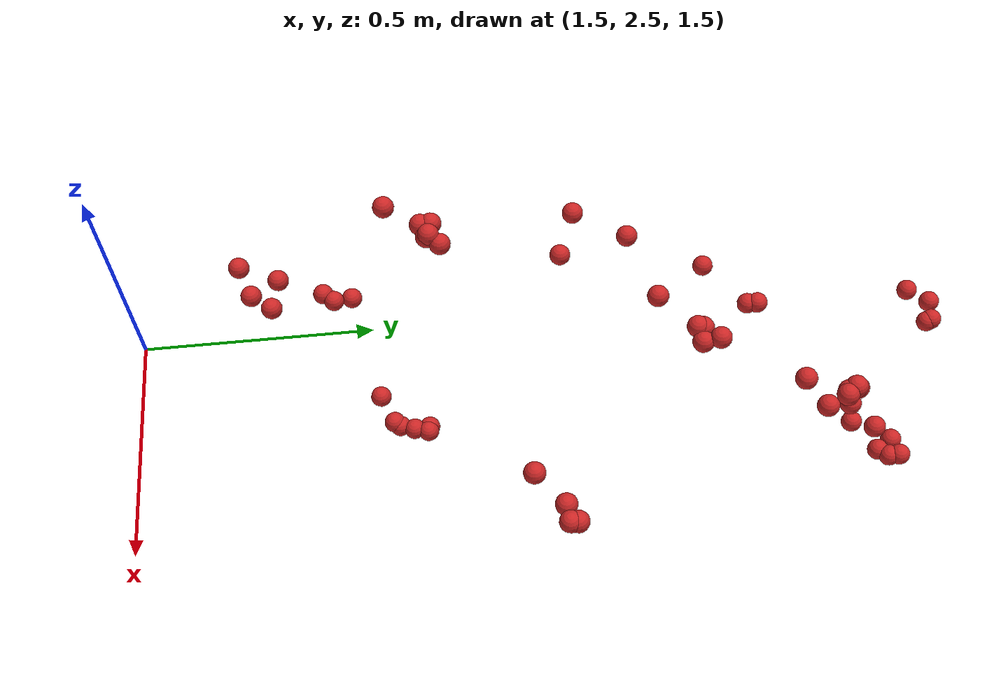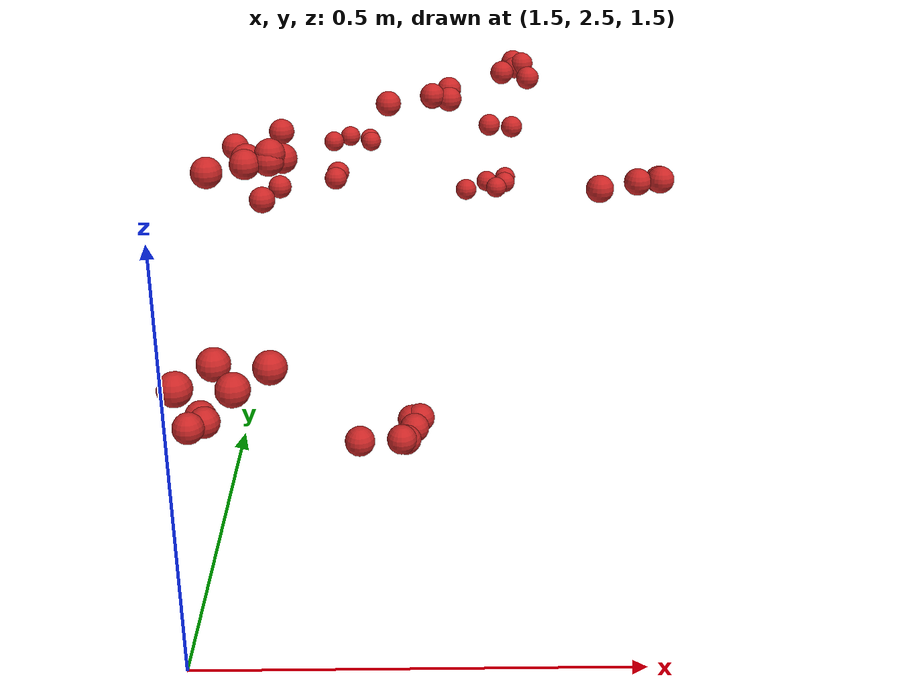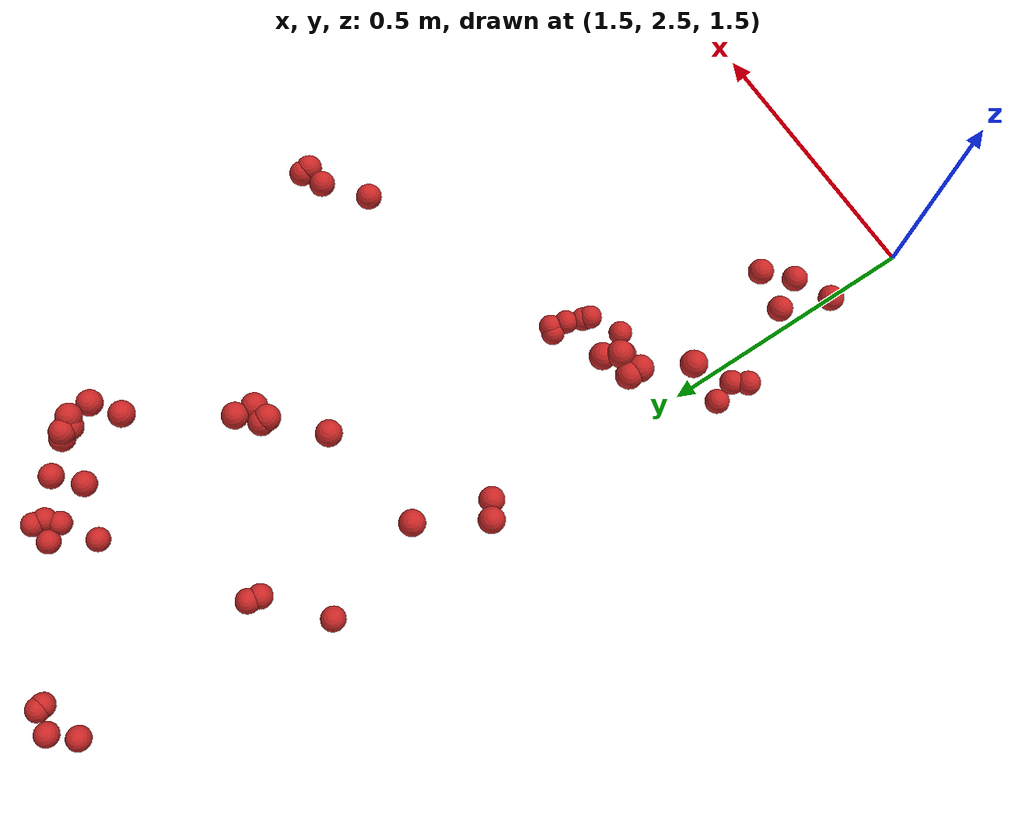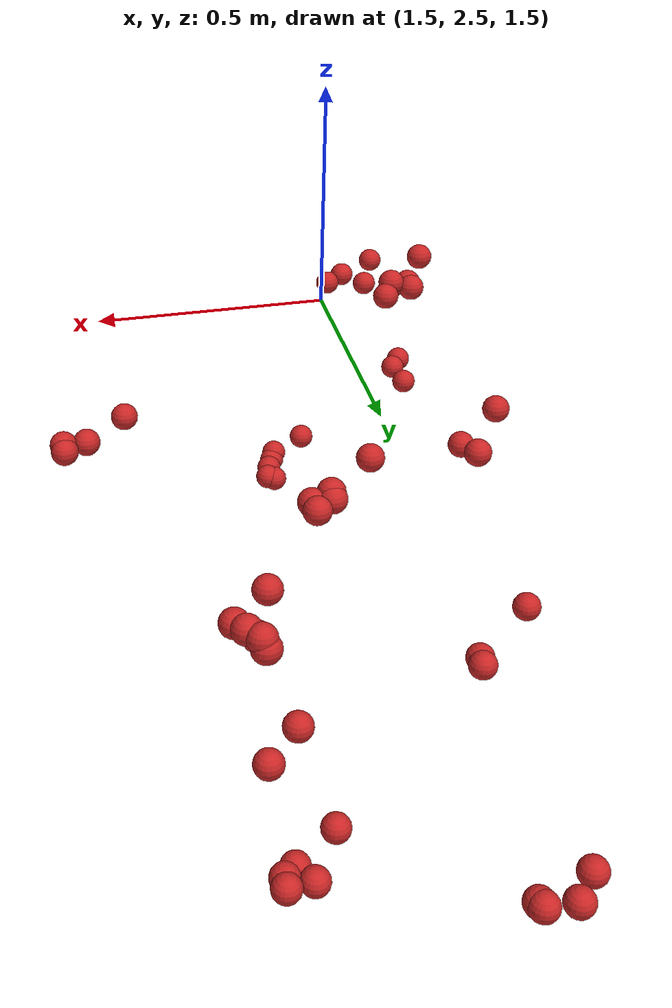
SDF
<sdf version="1.4">
 <model name="fruit_population">
  <static>true</static>
  <link name="fruit_3">
   <pose>1.461415170424467 3.0596517747299097 1.8744114157654639 0 0 0</pose>
   <collision name="fruit_collision_3"><geometry><sphere><radius>0.022</radius></sphere></geometry></collision>
   <visual name="visual">
    <geometry><sphere><radius>0.022</radius></sphere></geometry>
    <material><script><name>Gazebo/Red</name></script></material>
   </visual>
   <inertial>
    <mass>0.05</mass>
    <inertia>
     <ixx>9.679999999999999e-06</ixx>
     <ixy>0.0</ixy>
     <ixz>0.0</ixz>
     <iyy>9.679999999999999e-06</iyy>
     <iyz>0.0</iyz>
     <izz>9.679999999999999e-06</izz>
    </inertia>
   </inertial>
   <sensor name="fruit_contact_3" type="contact">
    <plugin name="contact_plugin_3" filename="libcontact_plugin.so"/>
    <contact><collision>fruit_collision_3</collision><topic>fruit_contact_topic_3</topic></contact>
   </sensor>
  </link>
  <link name="fruit_23">
   <pose>1.4610572739695524 2.7421724189867294 1.7140123662024471 0 0 0</pose>
   <collision name="fruit_collision_23"><geometry><sphere><radius>0.022</radius></sphere></geometry></collision>
   <visual name="visual">
    <geometry><sphere><radius>0.022</radius></sphere></geometry>
    <material><script><name>Gazebo/Red</name></script></material>
   </visual>
   <inertial>
    <mass>0.05</mass>
    <inertia>
     <ixx>9.679999999999999e-06</ixx>
     <ixy>0.0</ixy>
     <ixz>0.0</ixz>
     <iyy>9.679999999999999e-06</iyy>
     <iyz>0.0</iyz>
     <izz>9.679999999999999e-06</izz>
    </inertia>
   </inertial>
   <sensor name="fruit_contact_23" type="contact">
    <plugin name="contact_plugin_23" filename="libcontact_plugin.so"/>
    <contact><collision>fruit_collision_23</collision><topic>fruit_contact_topic_23</topic></contact>
   </sensor>
  </link>
  <link name="fruit_35">
   <pose>2.033196874632339 3.3074651122104486 1.7580920331443115 0 0 0</pose>
   <collision name="fruit_collision_35"><geometry><sphere><radius>0.022</radius></sphere></geometry></collision>
   <visual name="visual">
    <geometry><sphere><radius>0.022</radius></sphere></geometry>
    <material><script><name>Gazebo/Red</name></script></material>
   </visual>
   <inertial>
    <mass>0.05</mass>
    <inertia>
     <ixx>9.679999999999999e-06</ixx>
     <ixy>0.0</ixy>
     <ixz>0.0</ixz>
     <iyy>9.679999999999999e-06</iyy>
     <iyz>0.0</iyz>
     <izz>9.679999999999999e-06</izz>
    </inertia>
   </inertial>
   <sensor name="fruit_contact_35" type="contact">
    <plugin name="contact_plugin_35" filename="libcontact_plugin.so"/>
    <contact><collision>fruit_collision_35</collision><topic>fruit_contact_topic_35</topic></contact>
   </sensor>
  </link>
  <link name="fruit_54">
   <pose>1.6940554636960308 3.588182582914421 1.8154867118001696 0 0 0</pose>
   <collision name="fruit_collision_54"><geometry><sphere><radius>0.022</radius></sphere></geometry></collision>
   <visual name="visual">
    <geometry><sphere><radius>0.022</radius></sphere></geometry>
    <material><script><name>Gazebo/Red</name></script></material>
   </visual>
   <inertial>
    <mass>0.05</mass>
    <inertia>
     <ixx>9.679999999999999e-06</ixx>
     <ixy>0.0</ixy>
     <ixz>0.0</ixz>
     <iyy>9.679999999999999e-06</iyy>
     <iyz>0.0</iyz>
     <izz>9.679999999999999e-06</izz>
    </inertia>
   </inertial>
   <sensor name="fruit_contact_54" type="contact">
    <plugin name="contact_plugin_54" filename="libcontact_plugin.so"/>
    <contact><collision>fruit_collision_54</collision><topic>fruit_contact_topic_54</topic></contact>
   </sensor>
  </link>
  <link name="fruit_66">
   <pose>1.8887809052484796 3.9623957655818933 1.6596712220158767 0 0 0</pose>
   <collision name="fruit_collision_66"><geometry><sphere><radius>0.022</radius></sphere></geometry></collision>
   <visual name="visual">
    <geometry><sphere><radius>0.022</radius></sphere></geometry>
    <material><script><name>Gazebo/Red</name></script></material>
   </visual>
   <inertial>
    <mass>0.05</mass>
    <inertia>
     <ixx>9.679999999999999e-06</ixx>
     <ixy>0.0</ixy>
     <ixz>0.0</ixz>
     <iyy>9.679999999999999e-06</iyy>
     <iyz>0.0</iyz>
     <izz>9.679999999999999e-06</izz>
    </inertia>
   </inertial>
   <sensor name="fruit_contact_66" type="contact">
    <plugin name="contact_plugin_66" filename="libcontact_plugin.so"/>
    <contact><collision>fruit_collision_66</collision><topic>fruit_contact_topic_66</topic></contact>
   </sensor>
  </link>
  <link name="fruit_71">
   <pose>1.4798418697088527 3.7324781438710875 1.609637155316675 0 0 0</pose>
   <collision name="fruit_collision_71"><geometry><sphere><radius>0.022</radius></sphere></geometry></collision>
   <visual name="visual">
    <geometry><sphere><radius>0.022</radius></sphere></geometry>
    <material><script><name>Gazebo/Red</name></script></material>
   </visual>
   <inertial>
    <mass>0.05</mass>
    <inertia>
     <ixx>9.679999999999999e-06</ixx>
     <ixy>0.0</ixy>
     <ixz>0.0</ixz>
     <iyy>9.679999999999999e-06</iyy>
     <iyz>0.0</iyz>
     <izz>9.679999999999999e-06</izz>
    </inertia>
   </inertial>
   <sensor name="fruit_contact_71" type="contact">
    <plugin name="contact_plugin_71" filename="libcontact_plugin.so"/>
    <contact><collision>fruit_collision_71</collision><topic>fruit_contact_topic_71</topic></contact>
   </sensor>
  </link>
  <link name="fruit_72">
   <pose>1.5521702279331804 4.183644911034446 1.5536185929472948 0 0 0</pose>
   <collision name="fruit_collision_72"><geometry><sphere><radius>0.022</radius></sphere></geometry></collision>
   <visual name="visual">
    <geometry><sphere><radius>0.022</radius></sphere></geometry>
    <material><script><name>Gazebo/Red</name></script></material>
   </visual>
   <inertial>
    <mass>0.05</mass>
    <inertia>
     <ixx>9.679999999999999e-06</ixx>
     <ixy>0.0</ixy>
     <ixz>0.0</ixz>
     <iyy>9.679999999999999e-06</iyy>
     <iyz>0.0</iyz>
     <izz>9.679999999999999e-06</izz>
    </inertia>
   </inertial>
   <sensor name="fruit_contact_72" type="contact">
    <plugin name="contact_plugin_72" filename="libcontact_plugin.so"/>
    <contact><collision>fruit_collision_72</collision><topic>fruit_contact_topic_72</topic></contact>
   </sensor>
  </link>
  <link name="fruit_90">
   <pose>1.4438562682026237 3.446555152127506 1.7842292341678492 0 0 0</pose>
   <collision name="fruit_collision_90"><geometry><sphere><radius>0.022</radius></sphere></geometry></collision>
   <visual name="visual">
    <geometry><sphere><radius>0.022</radius></sphere></geometry>
    <material><script><name>Gazebo/Red</name></script></material>
   </visual>
   <inertial>
    <mass>0.05</mass>
    <inertia>
     <ixx>9.679999999999999e-06</ixx>
     <ixy>0.0</ixy>
     <ixz>0.0</ixz>
     <iyy>9.679999999999999e-06</iyy>
     <iyz>0.0</iyz>
     <izz>9.679999999999999e-06</izz>
    </inertia>
   </inertial>
   <sensor name="fruit_contact_90" type="contact">
    <plugin name="contact_plugin_90" filename="libcontact_plugin.so"/>
    <contact><collision>fruit_collision_90</collision><topic>fruit_contact_topic_90</topic></contact>
   </sensor>
  </link>
  <link name="fruit_100">
   <pose>1.9061175400180204 3.8457708704186477 1.8012671139114294 0 0 0</pose>
   <collision name="fruit_collision_100"><geometry><sphere><radius>0.022</radius></sphere></geometry></collision>
   <visual name="visual">
    <geometry><sphere><radius>0.022</radius></sphere></geometry>
    <material><script><name>Gazebo/Red</name></script></material>
   </visual>
   <inertial>
    <mass>0.05</mass>
    <inertia>
     <ixx>9.679999999999999e-06</ixx>
     <ixy>0.0</ixy>
     <ixz>0.0</ixz>
     <iyy>9.679999999999999e-06</iyy>
     <iyz>0.0</iyz>
     <izz>9.679999999999999e-06</izz>
    </inertia>
   </inertial>
   <sensor name="fruit_contact_100" type="contact">
    <plugin name="contact_plugin_100" filename="libcontact_plugin.so"/>
    <contact><collision>fruit_collision_100</collision><topic>fruit_contact_topic_100</topic></contact>
   </sensor>
  </link>
  <link name="fruit_129">
   <pose>1.6628714525867745 3.0089220678091144 1.4812288685125277 0 0 0</pose>
   <collision name="fruit_collision_129"><geometry><sphere><radius>0.022</radius></sphere></geometry></collision>
   <visual name="visual">
    <geometry><sphere><radius>0.022</radius></sphere></geometry>
    <material><script><name>Gazebo/Red</name></script></material>
   </visual>
   <inertial>
    <mass>0.05</mass>
    <inertia>
     <ixx>9.679999999999999e-06</ixx>
     <ixy>0.0</ixy>
     <ixz>0.0</ixz>
     <iyy>9.679999999999999e-06</iyy>
     <iyz>0.0</iyz>
     <izz>9.679999999999999e-06</izz>
    </inertia>
   </inertial>
   <sensor name="fruit_contact_129" type="contact">
    <plugin name="contact_plugin_129" filename="libcontact_plugin.so"/>
    <contact><collision>fruit_collision_129</collision><topic>fruit_contact_topic_129</topic></contact>
   </sensor>
  </link>
  <link name="fruit_174">
   <pose>1.8433235268228472 4.003868606814429 1.5035611030680347 0 0 0</pose>
   <collision name="fruit_collision_174"><geometry><sphere><radius>0.022</radius></sphere></geometry></collision>
   <visual name="visual">
    <geometry><sphere><radius>0.022</radius></sphere></geometry>
    <material><script><name>Gazebo/Red</name></script></material>
   </visual>
   <inertial>
    <mass>0.05</mass>
    <inertia>
     <ixx>9.679999999999999e-06</ixx>
     <ixy>0.0</ixy>
     <ixz>0.0</ixz>
     <iyy>9.679999999999999e-06</iyy>
     <iyz>0.0</iyz>
     <izz>9.679999999999999e-06</izz>
    </inertia>
   </inertial>
   <sensor name="fruit_contact_174" type="contact">
    <plugin name="contact_plugin_174" filename="libcontact_plugin.so"/>
    <contact><collision>fruit_collision_174</collision><topic>fruit_contact_topic_174</topic></contact>
   </sensor>
  </link>
  <link name="fruit_185">
   <pose>1.5807472053643763 3.8144890530160516 1.5971357872540697 0 0 0</pose>
   <collision name="fruit_collision_185"><geometry><sphere><radius>0.022</radius></sphere></geometry></collision>
   <visual name="visual">
    <geometry><sphere><radius>0.022</radius></sphere></geometry>
    <material><script><name>Gazebo/Red</name></script></material>
   </visual>
   <inertial>
    <mass>0.05</mass>
    <inertia>
     <ixx>9.679999999999999e-06</ixx>
     <ixy>0.0</ixy>
     <ixz>0.0</ixz>
     <iyy>9.679999999999999e-06</iyy>
     <iyz>0.0</iyz>
     <izz>9.679999999999999e-06</izz>
    </inertia>
   </inertial>
   <sensor name="fruit_contact_185" type="contact">
    <plugin name="contact_plugin_185" filename="libcontact_plugin.so"/>
    <contact><collision>fruit_collision_185</collision><topic>fruit_contact_topic_185</topic></contact>
   </sensor>
  </link>
  <link name="fruit_244">
   <pose>1.9288338413037236 4.0671237331264685 1.4968320528863783 0 0 0</pose>
   <collision name="fruit_collision_244"><geometry><sphere><radius>0.022</radius></sphere></geometry></collision>
   <visual name="visual">
    <geometry><sphere><radius>0.022</radius></sphere></geometry>
    <material><script><name>Gazebo/Red</name></script></material>
   </visual>
   <inertial>
    <mass>0.05</mass>
    <inertia>
     <ixx>9.679999999999999e-06</ixx>
     <ixy>0.0</ixy>
     <ixz>0.0</ixz>
     <iyy>9.679999999999999e-06</iyy>
     <iyz>0.0</iyz>
     <izz>9.679999999999999e-06</izz>
    </inertia>
   </inertial>
   <sensor name="fruit_contact_244" type="contact">
    <plugin name="contact_plugin_244" filename="libcontact_plugin.so"/>
    <contact><collision>fruit_collision_244</collision><topic>fruit_contact_topic_244</topic></contact>
   </sensor>
  </link>
  <link name="fruit_253">
   <pose>1.5381811467707451 3.14512740495516 1.8727208275857514 0 0 0</pose>
   <collision name="fruit_collision_253"><geometry><sphere><radius>0.022</radius></sphere></geometry></collision>
   <visual name="visual">
    <geometry><sphere><radius>0.022</radius></sphere></geometry>
    <material><script><name>Gazebo/Red</name></script></material>
   </visual>
   <inertial>
    <mass>0.05</mass>
    <inertia>
     <ixx>9.679999999999999e-06</ixx>
     <ixy>0.0</ixy>
     <ixz>0.0</ixz>
     <iyy>9.679999999999999e-06</iyy>
     <iyz>0.0</iyz>
     <izz>9.679999999999999e-06</izz>
    </inertia>
   </inertial>
   <sensor name="fruit_contact_253" type="contact">
    <plugin name="contact_plugin_253" filename="libcontact_plugin.so"/>
    <contact><collision>fruit_collision_253</collision><topic>fruit_contact_topic_253</topic></contact>
   </sensor>
  </link>
  <link name="fruit_268">
   <pose>1.9282284886451766 3.944845510480601 1.7863672936323411 0 0 0</pose>
   <collision name="fruit_collision_268"><geometry><sphere><radius>0.022</radius></sphere></geometry></collision>
   <visual name="visual">
    <geometry><sphere><radius>0.022</radius></sphere></geometry>
    <material><script><name>Gazebo/Red</name></script></material>
   </visual>
   <inertial>
    <mass>0.05</mass>
    <inertia>
     <ixx>9.679999999999999e-06</ixx>
     <ixy>0.0</ixy>
     <ixz>0.0</ixz>
     <iyy>9.679999999999999e-06</iyy>
     <iyz>0.0</iyz>
     <izz>9.679999999999999e-06</izz>
    </inertia>
   </inertial>
   <sensor name="fruit_contact_268" type="contact">
    <plugin name="contact_plugin_268" filename="libcontact_plugin.so"/>
    <contact><collision>fruit_collision_268</collision><topic>fruit_contact_topic_268</topic></contact>
   </sensor>
  </link>
  <link name="fruit_272">
   <pose>1.631449035760025 4.21932648170761 1.5484034977599126 0 0 0</pose>
   <collision name="fruit_collision_272"><geometry><sphere><radius>0.022</radius></sphere></geometry></collision>
   <visual name="visual">
    <geometry><sphere><radius>0.022</radius></sphere></geometry>
    <material><script><name>Gazebo/Red</name></script></material>
   </visual>
   <inertial>
    <mass>0.05</mass>
    <inertia>
     <ixx>9.679999999999999e-06</ixx>
     <ixy>0.0</ixy>
     <ixz>0.0</ixz>
     <iyy>9.679999999999999e-06</iyy>
     <iyz>0.0</iyz>
     <izz>9.679999999999999e-06</izz>
    </inertia>
   </inertial>
   <sensor name="fruit_contact_272" type="contact">
    <plugin name="contact_plugin_272" filename="libcontact_plugin.so"/>
    <contact><collision>fruit_collision_272</collision><topic>fruit_contact_topic_272</topic></contact>
   </sensor>
  </link>
  <link name="fruit_274">
   <pose>1.7227940927596033 3.034412662120632 1.4685133015292846 0 0 0</pose>
   <collision name="fruit_collision_274"><geometry><sphere><radius>0.022</radius></sphere></geometry></collision>
   <visual name="visual">
    <geometry><sphere><radius>0.022</radius></sphere></geometry>
    <material><script><name>Gazebo/Red</name></script></material>
   </visual>
   <inertial>
    <mass>0.05</mass>
    <inertia>
     <ixx>9.679999999999999e-06</ixx>
     <ixy>0.0</ixy>
     <ixz>0.0</ixz>
     <iyy>9.679999999999999e-06</iyy>
     <iyz>0.0</iyz>
     <izz>9.679999999999999e-06</izz>
    </inertia>
   </inertial>
   <sensor name="fruit_contact_274" type="contact">
    <plugin name="contact_plugin_274" filename="libcontact_plugin.so"/>
    <contact><collision>fruit_collision_274</collision><topic>fruit_contact_topic_274</topic></contact>
   </sensor>
  </link>
  <link name="fruit_284">
   <pose>1.4575531763224412 2.9223801058175067 1.5642507056529817 0 0 0</pose>
   <collision name="fruit_collision_284"><geometry><sphere><radius>0.022</radius></sphere></geometry></collision>
   <visual name="visual">
    <geometry><sphere><radius>0.022</radius></sphere></geometry>
    <material><script><name>Gazebo/Red</name></script></material>
   </visual>
   <inertial>
    <mass>0.05</mass>
    <inertia>
     <ixx>9.679999999999999e-06</ixx>
     <ixy>0.0</ixy>
     <ixz>0.0</ixz>
     <iyy>9.679999999999999e-06</iyy>
     <iyz>0.0</iyz>
     <izz>9.679999999999999e-06</izz>
    </inertia>
   </inertial>
   <sensor name="fruit_contact_284" type="contact">
    <plugin name="contact_plugin_284" filename="libcontact_plugin.so"/>
    <contact><collision>fruit_collision_284</collision><topic>fruit_contact_topic_284</topic></contact>
   </sensor>
  </link>
  <link name="fruit_317">
   <pose>1.7709569423721196 3.6560107400993758 1.8104730265640372 0 0 0</pose>
   <collision name="fruit_collision_317"><geometry><sphere><radius>0.022</radius></sphere></geometry></collision>
   <visual name="visual">
    <geometry><sphere><radius>0.022</radius></sphere></geometry>
    <material><script><name>Gazebo/Red</name></script></material>
   </visual>
   <inertial>
    <mass>0.05</mass>
    <inertia>
     <ixx>9.679999999999999e-06</ixx>
     <ixy>0.0</ixy>
     <ixz>0.0</ixz>
     <iyy>9.679999999999999e-06</iyy>
     <iyz>0.0</iyz>
     <izz>9.679999999999999e-06</izz>
    </inertia>
   </inertial>
   <sensor name="fruit_contact_317" type="contact">
    <plugin name="contact_plugin_317" filename="libcontact_plugin.so"/>
    <contact><collision>fruit_collision_317</collision><topic>fruit_contact_topic_317</topic></contact>
   </sensor>
  </link>
  <link name="fruit_318">
   <pose>1.7710842078396851 3.6672851999105758 1.8054210135621922 0 0 0</pose>
   <collision name="fruit_collision_318"><geometry><sphere><radius>0.022</radius></sphere></geometry></collision>
   <visual name="visual">
    <geometry><sphere><radius>0.022</radius></sphere></geometry>
    <material><script><name>Gazebo/Red</name></script></material>
   </visual>
   <inertial>
    <mass>0.05</mass>
    <inertia>
     <ixx>9.679999999999999e-06</ixx>
     <ixy>0.0</ixy>
     <ixz>0.0</ixz>
     <iyy>9.679999999999999e-06</iyy>
     <iyz>0.0</iyz>
     <izz>9.679999999999999e-06</izz>
    </inertia>
   </inertial>
   <sensor name="fruit_contact_318" type="contact">
    <plugin name="contact_plugin_318" filename="libcontact_plugin.so"/>
    <contact><collision>fruit_collision_318</collision><topic>fruit_contact_topic_318</topic></contact>
   </sensor>
  </link>
  <link name="fruit_324">
   <pose>1.9586732894697283 3.8809144663409105 1.7810825557883887 0 0 0</pose>
   <collision name="fruit_collision_324"><geometry><sphere><radius>0.022</radius></sphere></geometry></collision>
   <visual name="visual">
    <geometry><sphere><radius>0.022</radius></sphere></geometry>
    <material><script><name>Gazebo/Red</name></script></material>
   </visual>
   <inertial>
    <mass>0.05</mass>
    <inertia>
     <ixx>9.679999999999999e-06</ixx>
     <ixy>0.0</ixy>
     <ixz>0.0</ixz>
     <iyy>9.679999999999999e-06</iyy>
     <iyz>0.0</iyz>
     <izz>9.679999999999999e-06</izz>
    </inertia>
   </inertial>
   <sensor name="fruit_contact_324" type="contact">
    <plugin name="contact_plugin_324" filename="libcontact_plugin.so"/>
    <contact><collision>fruit_collision_324</collision><topic>fruit_contact_topic_324</topic></contact>
   </sensor>
  </link>
  <link name="fruit_331">
   <pose>1.932580160470053 3.938835646752181 1.7990235871791838 0 0 0</pose>
   <collision name="fruit_collision_331"><geometry><sphere><radius>0.022</radius></sphere></geometry></collision>
   <visual name="visual">
    <geometry><sphere><radius>0.022</radius></sphere></geometry>
    <material><script><name>Gazebo/Red</name></script></material>
   </visual>
   <inertial>
    <mass>0.05</mass>
    <inertia>
     <ixx>9.679999999999999e-06</ixx>
     <ixy>0.0</ixy>
     <ixz>0.0</ixz>
     <iyy>9.679999999999999e-06</iyy>
     <iyz>0.0</iyz>
     <izz>9.679999999999999e-06</izz>
    </inertia>
   </inertial>
   <sensor name="fruit_contact_331" type="contact">
    <plugin name="contact_plugin_331" filename="libcontact_plugin.so"/>
    <contact><collision>fruit_collision_331</collision><topic>fruit_contact_topic_331</topic></contact>
   </sensor>
  </link>
  <link name="fruit_336">
   <pose>1.4870334676110577 3.4162430768172003 1.7014390078206323 0 0 0</pose>
   <collision name="fruit_collision_336"><geometry><sphere><radius>0.022</radius></sphere></geometry></collision>
   <visual name="visual">
    <geometry><sphere><radius>0.022</radius></sphere></geometry>
    <material><script><name>Gazebo/Red</name></script></material>
   </visual>
   <inertial>
    <mass>0.05</mass>
    <inertia>
     <ixx>9.679999999999999e-06</ixx>
     <ixy>0.0</ixy>
     <ixz>0.0</ixz>
     <iyy>9.679999999999999e-06</iyy>
     <iyz>0.0</iyz>
     <izz>9.679999999999999e-06</izz>
    </inertia>
   </inertial>
   <sensor name="fruit_contact_336" type="contact">
    <plugin name="contact_plugin_336" filename="libcontact_plugin.so"/>
    <contact><collision>fruit_collision_336</collision><topic>fruit_contact_topic_336</topic></contact>
   </sensor>
  </link>
  <link name="fruit_337">
   <pose>1.8017690450628512 3.662925795304002 1.8015097205634862 0 0 0</pose>
   <collision name="fruit_collision_337"><geometry><sphere><radius>0.022</radius></sphere></geometry></collision>
   <visual name="visual">
    <geometry><sphere><radius>0.022</radius></sphere></geometry>
    <material><script><name>Gazebo/Red</name></script></material>
   </visual>
   <inertial>
    <mass>0.05</mass>
    <inertia>
     <ixx>9.679999999999999e-06</ixx>
     <ixy>0.0</ixy>
     <ixz>0.0</ixz>
     <iyy>9.679999999999999e-06</iyy>
     <iyz>0.0</iyz>
     <izz>9.679999999999999e-06</izz>
    </inertia>
   </inertial>
   <sensor name="fruit_contact_337" type="contact">
    <plugin name="contact_plugin_337" filename="libcontact_plugin.so"/>
    <contact><collision>fruit_collision_337</collision><topic>fruit_contact_topic_337</topic></contact>
   </sensor>
  </link>
  <link name="fruit_347">
   <pose>1.5036144230475221 3.1301962794311966 1.8619331052778845 0 0 0</pose>
   <collision name="fruit_collision_347"><geometry><sphere><radius>0.022</radius></sphere></geometry></collision>
   <visual name="visual">
    <geometry><sphere><radius>0.022</radius></sphere></geometry>
    <material><script><name>Gazebo/Red</name></script></material>
   </visual>
   <inertial>
    <mass>0.05</mass>
    <inertia>
     <ixx>9.679999999999999e-06</ixx>
     <ixy>0.0</ixy>
     <ixz>0.0</ixz>
     <iyy>9.679999999999999e-06</iyy>
     <iyz>0.0</iyz>
     <izz>9.679999999999999e-06</izz>
    </inertia>
   </inertial>
   <sensor name="fruit_contact_347" type="contact">
    <plugin name="contact_plugin_347" filename="libcontact_plugin.so"/>
    <contact><collision>fruit_collision_347</collision><topic>fruit_contact_topic_347</topic></contact>
   </sensor>
  </link>
  <link name="fruit_349">
   <pose>1.494717516987601 2.822531758799968 1.7049151740676476 0 0 0</pose>
   <collision name="fruit_collision_349"><geometry><sphere><radius>0.022</radius></sphere></geometry></collision>
   <visual name="visual">
    <geometry><sphere><radius>0.022</radius></sphere></geometry>
    <material><script><name>Gazebo/Red</name></script></material>
   </visual>
   <inertial>
    <mass>0.05</mass>
    <inertia>
     <ixx>9.679999999999999e-06</ixx>
     <ixy>0.0</ixy>
     <ixz>0.0</ixz>
     <iyy>9.679999999999999e-06</iyy>
     <iyz>0.0</iyz>
     <izz>9.679999999999999e-06</izz>
    </inertia>
   </inertial>
   <sensor name="fruit_contact_349" type="contact">
    <plugin name="contact_plugin_349" filename="libcontact_plugin.so"/>
    <contact><collision>fruit_collision_349</collision><topic>fruit_contact_topic_349</topic></contact>
   </sensor>
  </link>
  <link name="fruit_353">
   <pose>1.5868171146029735 4.225027664183705 1.5525734562416302 0 0 0</pose>
   <collision name="fruit_collision_353"><geometry><sphere><radius>0.022</radius></sphere></geometry></collision>
   <visual name="visual">
    <geometry><sphere><radius>0.022</radius></sphere></geometry>
    <material><script><name>Gazebo/Red</name></script></material>
   </visual>
   <inertial>
    <mass>0.05</mass>
    <inertia>
     <ixx>9.679999999999999e-06</ixx>
     <ixy>0.0</ixy>
     <ixz>0.0</ixz>
     <iyy>9.679999999999999e-06</iyy>
     <iyz>0.0</iyz>
     <izz>9.679999999999999e-06</izz>
    </inertia>
   </inertial>
   <sensor name="fruit_contact_353" type="contact">
    <plugin name="contact_plugin_353" filename="libcontact_plugin.so"/>
    <contact><collision>fruit_collision_353</collision><topic>fruit_contact_topic_353</topic></contact>
   </sensor>
  </link>
  <link name="fruit_354">
   <pose>1.63394530201848 4.2095852809071 1.545442149185924 0 0 0</pose>
   <collision name="fruit_collision_354"><geometry><sphere><radius>0.022</radius></sphere></geometry></collision>
   <visual name="visual">
    <geometry><sphere><radius>0.022</radius></sphere></geometry>
    <material><script><name>Gazebo/Red</name></script></material>
   </visual>
   <inertial>
    <mass>0.05</mass>
    <inertia>
     <ixx>9.679999999999999e-06</ixx>
     <ixy>0.0</ixy>
     <ixz>0.0</ixz>
     <iyy>9.679999999999999e-06</iyy>
     <iyz>0.0</iyz>
     <izz>9.679999999999999e-06</izz>
    </inertia>
   </inertial>
   <sensor name="fruit_contact_354" type="contact">
    <plugin name="contact_plugin_354" filename="libcontact_plugin.so"/>
    <contact><collision>fruit_collision_354</collision><topic>fruit_contact_topic_354</topic></contact>
   </sensor>
  </link>
  <link name="fruit_364">
   <pose>1.9374253833230295 4.0041929933718565 1.6424279999364346 0 0 0</pose>
   <collision name="fruit_collision_364"><geometry><sphere><radius>0.022</radius></sphere></geometry></collision>
   <visual name="visual">
    <geometry><sphere><radius>0.022</radius></sphere></geometry>
    <material><script><name>Gazebo/Red</name></script></material>
   </visual>
   <inertial>
    <mass>0.05</mass>
    <inertia>
     <ixx>9.679999999999999e-06</ixx>
     <ixy>0.0</ixy>
     <ixz>0.0</ixz>
     <iyy>9.679999999999999e-06</iyy>
     <iyz>0.0</iyz>
     <izz>9.679999999999999e-06</izz>
    </inertia>
   </inertial>
   <sensor name="fruit_contact_364" type="contact">
    <plugin name="contact_plugin_364" filename="libcontact_plugin.so"/>
    <contact><collision>fruit_collision_364</collision><topic>fruit_contact_topic_364</topic></contact>
   </sensor>
  </link>
  <link name="fruit_371">
   <pose>1.4453101477614017 2.9609236959612972 1.5519283072783 0 0 0</pose>
   <collision name="fruit_collision_371"><geometry><sphere><radius>0.022</radius></sphere></geometry></collision>
   <visual name="visual">
    <geometry><sphere><radius>0.022</radius></sphere></geometry>
    <material><script><name>Gazebo/Red</name></script></material>
   </visual>
   <inertial>
    <mass>0.05</mass>
    <inertia>
     <ixx>9.679999999999999e-06</ixx>
     <ixy>0.0</ixy>
     <ixz>0.0</ixz>
     <iyy>9.679999999999999e-06</iyy>
     <iyz>0.0</iyz>
     <izz>9.679999999999999e-06</izz>
    </inertia>
   </inertial>
   <sensor name="fruit_contact_371" type="contact">
    <plugin name="contact_plugin_371" filename="libcontact_plugin.so"/>
    <contact><collision>fruit_collision_371</collision><topic>fruit_contact_topic_371</topic></contact>
   </sensor>
  </link>
  <link name="fruit_382">
   <pose>1.9098937040938713 4.047594394924427 1.4922698705481923 0 0 0</pose>
   <collision name="fruit_collision_382"><geometry><sphere><radius>0.022</radius></sphere></geometry></collision>
   <visual name="visual">
    <geometry><sphere><radius>0.022</radius></sphere></geometry>
    <material><script><name>Gazebo/Red</name></script></material>
   </visual>
   <inertial>
    <mass>0.05</mass>
    <inertia>
     <ixx>9.679999999999999e-06</ixx>
     <ixy>0.0</ixy>
     <ixz>0.0</ixz>
     <iyy>9.679999999999999e-06</iyy>
     <iyz>0.0</iyz>
     <izz>9.679999999999999e-06</izz>
    </inertia>
   </inertial>
   <sensor name="fruit_contact_382" type="contact">
    <plugin name="contact_plugin_382" filename="libcontact_plugin.so"/>
    <contact><collision>fruit_collision_382</collision><topic>fruit_contact_topic_382</topic></contact>
   </sensor>
  </link>
  <link name="fruit_401">
   <pose>1.5842042023196181 3.8356773296711326 1.6015988338348182 0 0 0</pose>
   <collision name="fruit_collision_401"><geometry><sphere><radius>0.022</radius></sphere></geometry></collision>
   <visual name="visual">
    <geometry><sphere><radius>0.022</radius></sphere></geometry>
    <material><script><name>Gazebo/Red</name></script></material>
   </visual>
   <inertial>
    <mass>0.05</mass>
    <inertia>
     <ixx>9.679999999999999e-06</ixx>
     <ixy>0.0</ixy>
     <ixz>0.0</ixz>
     <iyy>9.679999999999999e-06</iyy>
     <iyz>0.0</iyz>
     <izz>9.679999999999999e-06</izz>
    </inertia>
   </inertial>
   <sensor name="fruit_contact_401" type="contact">
    <plugin name="contact_plugin_401" filename="libcontact_plugin.so"/>
    <contact><collision>fruit_collision_401</collision><topic>fruit_contact_topic_401</topic></contact>
   </sensor>
  </link>
  <link name="fruit_439">
   <pose>1.5259079344430573 2.7657248407174033 1.6997863895459298 0 0 0</pose>
   <collision name="fruit_collision_439"><geometry><sphere><radius>0.022</radius></sphere></geometry></collision>
   <visual name="visual">
    <geometry><sphere><radius>0.022</radius></sphere></geometry>
    <material><script><name>Gazebo/Red</name></script></material>
   </visual>
   <inertial>
    <mass>0.05</mass>
    <inertia>
     <ixx>9.679999999999999e-06</ixx>
     <ixy>0.0</ixy>
     <ixz>0.0</ixz>
     <iyy>9.679999999999999e-06</iyy>
     <iyz>0.0</iyz>
     <izz>9.679999999999999e-06</izz>
    </inertia>
   </inertial>
   <sensor name="fruit_contact_439" type="contact">
    <plugin name="contact_plugin_439" filename="libcontact_plugin.so"/>
    <contact><collision>fruit_collision_439</collision><topic>fruit_contact_topic_439</topic></contact>
   </sensor>
  </link>
  <link name="fruit_508">
   <pose>1.5035780194991715 3.1515926858292485 1.862955564797215 0 0 0</pose>
   <collision name="fruit_collision_508"><geometry><sphere><radius>0.022</radius></sphere></geometry></collision>
   <visual name="visual">
    <geometry><sphere><radius>0.022</radius></sphere></geometry>
    <material><script><name>Gazebo/Red</name></script></material>
   </visual>
   <inertial>
    <mass>0.05</mass>
    <inertia>
     <ixx>9.679999999999999e-06</ixx>
     <ixy>0.0</ixy>
     <ixz>0.0</ixz>
     <iyy>9.679999999999999e-06</iyy>
     <iyz>0.0</iyz>
     <izz>9.679999999999999e-06</izz>
    </inertia>
   </inertial>
   <sensor name="fruit_contact_508" type="contact">
    <plugin name="contact_plugin_508" filename="libcontact_plugin.so"/>
    <contact><collision>fruit_collision_508</collision><topic>fruit_contact_topic_508</topic></contact>
   </sensor>
  </link>
  <link name="fruit_522">
   <pose>1.5666059128964465 2.809310875727625 1.7070044740541406 0 0 0</pose>
   <collision name="fruit_collision_522"><geometry><sphere><radius>0.022</radius></sphere></geometry></collision>
   <visual name="visual">
    <geometry><sphere><radius>0.022</radius></sphere></geometry>
    <material><script><name>Gazebo/Red</name></script></material>
   </visual>
   <inertial>
    <mass>0.05</mass>
    <inertia>
     <ixx>9.679999999999999e-06</ixx>
     <ixy>0.0</ixy>
     <ixz>0.0</ixz>
     <iyy>9.679999999999999e-06</iyy>
     <iyz>0.0</iyz>
     <izz>9.679999999999999e-06</izz>
    </inertia>
   </inertial>
   <sensor name="fruit_contact_522" type="contact">
    <plugin name="contact_plugin_522" filename="libcontact_plugin.so"/>
    <contact><collision>fruit_collision_522</collision><topic>fruit_contact_topic_522</topic></contact>
   </sensor>
  </link>
  <link name="fruit_560">
   <pose>1.8018656880415913 3.696951914484154 1.8104458322142354 0 0 0</pose>
   <collision name="fruit_collision_560"><geometry><sphere><radius>0.022</radius></sphere></geometry></collision>
   <visual name="visual">
    <geometry><sphere><radius>0.022</radius></sphere></geometry>
    <material><script><name>Gazebo/Red</name></script></material>
   </visual>
   <inertial>
    <mass>0.05</mass>
    <inertia>
     <ixx>9.679999999999999e-06</ixx>
     <ixy>0.0</ixy>
     <ixz>0.0</ixz>
     <iyy>9.679999999999999e-06</iyy>
     <iyz>0.0</iyz>
     <izz>9.679999999999999e-06</izz>
    </inertia>
   </inertial>
   <sensor name="fruit_contact_560" type="contact">
    <plugin name="contact_plugin_560" filename="libcontact_plugin.so"/>
    <contact><collision>fruit_collision_560</collision><topic>fruit_contact_topic_560</topic></contact>
   </sensor>
  </link>
  <link name="fruit_563">
   <pose>1.9308645409727732 4.087956404551732 1.5007055778190865 0 0 0</pose>
   <collision name="fruit_collision_563"><geometry><sphere><radius>0.022</radius></sphere></geometry></collision>
   <visual name="visual">
    <geometry><sphere><radius>0.022</radius></sphere></geometry>
    <material><script><name>Gazebo/Red</name></script></material>
   </visual>
   <inertial>
    <mass>0.05</mass>
    <inertia>
     <ixx>9.679999999999999e-06</ixx>
     <ixy>0.0</ixy>
     <ixz>0.0</ixz>
     <iyy>9.679999999999999e-06</iyy>
     <iyz>0.0</iyz>
     <izz>9.679999999999999e-06</izz>
    </inertia>
   </inertial>
   <sensor name="fruit_contact_563" type="contact">
    <plugin name="contact_plugin_563" filename="libcontact_plugin.so"/>
    <contact><collision>fruit_collision_563</collision><topic>fruit_contact_topic_563</topic></contact>
   </sensor>
  </link>
  <link name="fruit_565">
   <pose>1.935882378765986 3.924896351163631 1.7910532190192212 0 0 0</pose>
   <collision name="fruit_collision_565"><geometry><sphere><radius>0.022</radius></sphere></geometry></collision>
   <visual name="visual">
    <geometry><sphere><radius>0.022</radius></sphere></geometry>
    <material><script><name>Gazebo/Red</name></script></material>
   </visual>
   <inertial>
    <mass>0.05</mass>
    <inertia>
     <ixx>9.679999999999999e-06</ixx>
     <ixy>0.0</ixy>
     <ixz>0.0</ixz>
     <iyy>9.679999999999999e-06</iyy>
     <iyz>0.0</iyz>
     <izz>9.679999999999999e-06</izz>
    </inertia>
   </inertial>
   <sensor name="fruit_contact_565" type="contact">
    <plugin name="contact_plugin_565" filename="libcontact_plugin.so"/>
    <contact><collision>fruit_collision_565</collision><topic>fruit_contact_topic_565</topic></contact>
   </sensor>
  </link>
  <link name="fruit_571">
   <pose>1.5532572310623558 3.166527892159798 1.8583745322647562 0 0 0</pose>
   <collision name="fruit_collision_571"><geometry><sphere><radius>0.022</radius></sphere></geometry></collision>
   <visual name="visual">
    <geometry><sphere><radius>0.022</radius></sphere></geometry>
    <material><script><name>Gazebo/Red</name></script></material>
   </visual>
   <inertial>
    <mass>0.05</mass>
    <inertia>
     <ixx>9.679999999999999e-06</ixx>
     <ixy>0.0</ixy>
     <ixz>0.0</ixz>
     <iyy>9.679999999999999e-06</iyy>
     <iyz>0.0</iyz>
     <izz>9.679999999999999e-06</izz>
    </inertia>
   </inertial>
   <sensor name="fruit_contact_571" type="contact">
    <plugin name="contact_plugin_571" filename="libcontact_plugin.so"/>
    <contact><collision>fruit_collision_571</collision><topic>fruit_contact_topic_571</topic></contact>
   </sensor>
  </link>
  <link name="fruit_574">
   <pose>2.1384713606709926 3.363708232148971 1.7526131482222473 0 0 0</pose>
   <collision name="fruit_collision_574"><geometry><sphere><radius>0.022</radius></sphere></geometry></collision>
   <visual name="visual">
    <geometry><sphere><radius>0.022</radius></sphere></geometry>
    <material><script><name>Gazebo/Red</name></script></material>
   </visual>
   <inertial>
    <mass>0.05</mass>
    <inertia>
     <ixx>9.679999999999999e-06</ixx>
     <ixy>0.0</ixy>
     <ixz>0.0</ixz>
     <iyy>9.679999999999999e-06</iyy>
     <iyz>0.0</iyz>
     <izz>9.679999999999999e-06</izz>
    </inertia>
   </inertial>
   <sensor name="fruit_contact_574" type="contact">
    <plugin name="contact_plugin_574" filename="libcontact_plugin.so"/>
    <contact><collision>fruit_collision_574</collision><topic>fruit_contact_topic_574</topic></contact>
   </sensor>
  </link>
  <link name="fruit_598">
   <pose>2.1379856882035053 3.378318260342235 1.748489732542043 0 0 0</pose>
   <collision name="fruit_collision_598"><geometry><sphere><radius>0.022</radius></sphere></geometry></collision>
   <visual name="visual">
    <geometry><sphere><radius>0.022</radius></sphere></geometry>
    <material><script><name>Gazebo/Red</name></script></material>
   </visual>
   <inertial>
    <mass>0.05</mass>
    <inertia>
     <ixx>9.679999999999999e-06</ixx>
     <ixy>0.0</ixy>
     <ixz>0.0</ixz>
     <iyy>9.679999999999999e-06</iyy>
     <iyz>0.0</iyz>
     <izz>9.679999999999999e-06</izz>
    </inertia>
   </inertial>
   <sensor name="fruit_contact_598" type="contact">
    <plugin name="contact_plugin_598" filename="libcontact_plugin.so"/>
    <contact><collision>fruit_collision_598</collision><topic>fruit_contact_topic_598</topic></contact>
   </sensor>
  </link>
  <link name="fruit_666">
   <pose>1.74935235402306 3.1057482799736094 1.4635224107182232 0 0 0</pose>
   <collision name="fruit_collision_666"><geometry><sphere><radius>0.022</radius></sphere></geometry></collision>
   <visual name="visual">
    <geometry><sphere><radius>0.022</radius></sphere></geometry>
    <material><script><name>Gazebo/Red</name></script></material>
   </visual>
   <inertial>
    <mass>0.05</mass>
    <inertia>
     <ixx>9.679999999999999e-06</ixx>
     <ixy>0.0</ixy>
     <ixz>0.0</ixz>
     <iyy>9.679999999999999e-06</iyy>
     <iyz>0.0</iyz>
     <izz>9.679999999999999e-06</izz>
    </inertia>
   </inertial>
   <sensor name="fruit_contact_666" type="contact">
    <plugin name="contact_plugin_666" filename="libcontact_plugin.so"/>
    <contact><collision>fruit_collision_666</collision><topic>fruit_contact_topic_666</topic></contact>
   </sensor>
  </link>
  <link name="fruit_669">
   <pose>1.8903544442783107 4.079720815159842 1.4951507504351824 0 0 0</pose>
   <collision name="fruit_collision_669"><geometry><sphere><radius>0.022</radius></sphere></geometry></collision>
   <visual name="visual">
    <geometry><sphere><radius>0.022</radius></sphere></geometry>
    <material><script><name>Gazebo/Red</name></script></material>
   </visual>
   <inertial>
    <mass>0.05</mass>
    <inertia>
     <ixx>9.679999999999999e-06</ixx>
     <ixy>0.0</ixy>
     <ixz>0.0</ixz>
     <iyy>9.679999999999999e-06</iyy>
     <iyz>0.0</iyz>
     <izz>9.679999999999999e-06</izz>
    </inertia>
   </inertial>
   <sensor name="fruit_contact_669" type="contact">
    <plugin name="contact_plugin_669" filename="libcontact_plugin.so"/>
    <contact><collision>fruit_collision_669</collision><topic>fruit_contact_topic_669</topic></contact>
   </sensor>
  </link>
  <link name="fruit_673">
   <pose>1.74097474040021 3.0763310216988855 1.4634130291584542 0 0 0</pose>
   <collision name="fruit_collision_673"><geometry><sphere><radius>0.022</radius></sphere></geometry></collision>
   <visual name="visual">
    <geometry><sphere><radius>0.022</radius></sphere></geometry>
    <material><script><name>Gazebo/Red</name></script></material>
   </visual>
   <inertial>
    <mass>0.05</mass>
    <inertia>
     <ixx>9.679999999999999e-06</ixx>
     <ixy>0.0</ixy>
     <ixz>0.0</ixz>
     <iyy>9.679999999999999e-06</iyy>
     <iyz>0.0</iyz>
     <izz>9.679999999999999e-06</izz>
    </inertia>
   </inertial>
   <sensor name="fruit_contact_673" type="contact">
    <plugin name="contact_plugin_673" filename="libcontact_plugin.so"/>
    <contact><collision>fruit_collision_673</collision><topic>fruit_contact_topic_673</topic></contact>
   </sensor>
  </link>
  <link name="fruit_682">
   <pose>1.5094556563817898 3.552306047304449 1.7766841826642303 0 0 0</pose>
   <collision name="fruit_collision_682"><geometry><sphere><radius>0.022</radius></sphere></geometry></collision>
   <visual name="visual">
    <geometry><sphere><radius>0.022</radius></sphere></geometry>
    <material><script><name>Gazebo/Red</name></script></material>
   </visual>
   <inertial>
    <mass>0.05</mass>
    <inertia>
     <ixx>9.679999999999999e-06</ixx>
     <ixy>0.0</ixy>
     <ixz>0.0</ixz>
     <iyy>9.679999999999999e-06</iyy>
     <iyz>0.0</iyz>
     <izz>9.679999999999999e-06</izz>
    </inertia>
   </inertial>
   <sensor name="fruit_contact_682" type="contact">
    <plugin name="contact_plugin_682" filename="libcontact_plugin.so"/>
    <contact><collision>fruit_collision_682</collision><topic>fruit_contact_topic_682</topic></contact>
   </sensor>
  </link>
  <link name="fruit_696">
   <pose>1.7369891301586287 3.108632347987915 1.4595331864955867 0 0 0</pose>
   <collision name="fruit_collision_696"><geometry><sphere><radius>0.022</radius></sphere></geometry></collision>
   <visual name="visual">
    <geometry><sphere><radius>0.022</radius></sphere></geometry>
    <material><script><name>Gazebo/Red</name></script></material>
   </visual>
   <inertial>
    <mass>0.05</mass>
    <inertia>
     <ixx>9.679999999999999e-06</ixx>
     <ixy>0.0</ixy>
     <ixz>0.0</ixz>
     <iyy>9.679999999999999e-06</iyy>
     <iyz>0.0</iyz>
     <izz>9.679999999999999e-06</izz>
    </inertia>
   </inertial>
   <sensor name="fruit_contact_696" type="contact">
    <plugin name="contact_plugin_696" filename="libcontact_plugin.so"/>
    <contact><collision>fruit_collision_696</collision><topic>fruit_contact_topic_696</topic></contact>
   </sensor>
  </link>
  <link name="fruit_702">
   <pose>1.7292869636240131 3.0463656536106347 1.460775997454098 0 0 0</pose>
   <collision name="fruit_collision_702"><geometry><sphere><radius>0.022</radius></sphere></geometry></collision>
   <visual name="visual">
    <geometry><sphere><radius>0.022</radius></sphere></geometry>
    <material><script><name>Gazebo/Red</name></script></material>
   </visual>
   <inertial>
    <mass>0.05</mass>
    <inertia>
     <ixx>9.679999999999999e-06</ixx>
     <ixy>0.0</ixy>
     <ixz>0.0</ixz>
     <iyy>9.679999999999999e-06</iyy>
     <iyz>0.0</iyz>
     <izz>9.679999999999999e-06</izz>
    </inertia>
   </inertial>
   <sensor name="fruit_contact_702" type="contact">
    <plugin name="contact_plugin_702" filename="libcontact_plugin.so"/>
    <contact><collision>fruit_collision_702</collision><topic>fruit_contact_topic_702</topic></contact>
   </sensor>
  </link>
  <link name="fruit_747">
   <pose>2.100995752910967 3.360278007740076 1.7505141071426091 0 0 0</pose>
   <collision name="fruit_collision_747"><geometry><sphere><radius>0.022</radius></sphere></geometry></collision>
   <visual name="visual">
    <geometry><sphere><radius>0.022</radius></sphere></geometry>
    <material><script><name>Gazebo/Red</name></script></material>
   </visual>
   <inertial>
    <mass>0.05</mass>
    <inertia>
     <ixx>9.679999999999999e-06</ixx>
     <ixy>0.0</ixy>
     <ixz>0.0</ixz>
     <iyy>9.679999999999999e-06</iyy>
     <iyz>0.0</iyz>
     <izz>9.679999999999999e-06</izz>
    </inertia>
   </inertial>
   <sensor name="fruit_contact_747" type="contact">
    <plugin name="contact_plugin_747" filename="libcontact_plugin.so"/>
    <contact><collision>fruit_collision_747</collision><topic>fruit_contact_topic_747</topic></contact>
   </sensor>
  </link>
  <link name="fruit_771">
   <pose>1.5365730930496153 3.140716241429145 1.8631595372674192 0 0 0</pose>
   <collision name="fruit_collision_771"><geometry><sphere><radius>0.022</radius></sphere></geometry></collision>
   <visual name="visual">
    <geometry><sphere><radius>0.022</radius></sphere></geometry>
    <material><script><name>Gazebo/Red</name></script></material>
   </visual>
   <inertial>
    <mass>0.05</mass>
    <inertia>
     <ixx>9.679999999999999e-06</ixx>
     <ixy>0.0</ixy>
     <ixz>0.0</ixz>
     <iyy>9.679999999999999e-06</iyy>
     <iyz>0.0</iyz>
     <izz>9.679999999999999e-06</izz>
    </inertia>
   </inertial>
   <sensor name="fruit_contact_771" type="contact">
    <plugin name="contact_plugin_771" filename="libcontact_plugin.so"/>
    <contact><collision>fruit_collision_771</collision><topic>fruit_contact_topic_771</topic></contact>
   </sensor>
  </link>
  <link name="fruit_773">
   <pose>1.4396849577611914 2.899682862797844 1.5682359536156238 0 0 0</pose>
   <collision name="fruit_collision_773"><geometry><sphere><radius>0.022</radius></sphere></geometry></collision>
   <visual name="visual">
    <geometry><sphere><radius>0.022</radius></sphere></geometry>
    <material><script><name>Gazebo/Red</name></script></material>
   </visual>
   <inertial>
    <mass>0.05</mass>
    <inertia>
     <ixx>9.679999999999999e-06</ixx>
     <ixy>0.0</ixy>
     <ixz>0.0</ixz>
     <iyy>9.679999999999999e-06</iyy>
     <iyz>0.0</iyz>
     <izz>9.679999999999999e-06</izz>
    </inertia>
   </inertial>
   <sensor name="fruit_contact_773" type="contact">
    <plugin name="contact_plugin_773" filename="libcontact_plugin.so"/>
    <contact><collision>fruit_collision_773</collision><topic>fruit_contact_topic_773</topic></contact>
   </sensor>
  </link>
  <link name="fruit_802">
   <pose>1.948992060334849 3.91835182182137 1.7995261099819346 0 0 0</pose>
   <collision name="fruit_collision_802"><geometry><sphere><radius>0.022</radius></sphere></geometry></collision>
   <visual name="visual">
    <geometry><sphere><radius>0.022</radius></sphere></geometry>
    <material><script><name>Gazebo/Red</name></script></material>
   </visual>
   <inertial>
    <mass>0.05</mass>
    <inertia>
     <ixx>9.679999999999999e-06</ixx>
     <ixy>0.0</ixy>
     <ixz>0.0</ixz>
     <iyy>9.679999999999999e-06</iyy>
     <iyz>0.0</iyz>
     <izz>9.679999999999999e-06</izz>
    </inertia>
   </inertial>
   <sensor name="fruit_contact_802" type="contact">
    <plugin name="contact_plugin_802" filename="libcontact_plugin.so"/>
    <contact><collision>fruit_collision_802</collision><topic>fruit_contact_topic_802</topic></contact>
   </sensor>
  </link>
 </model>
</sdf>
